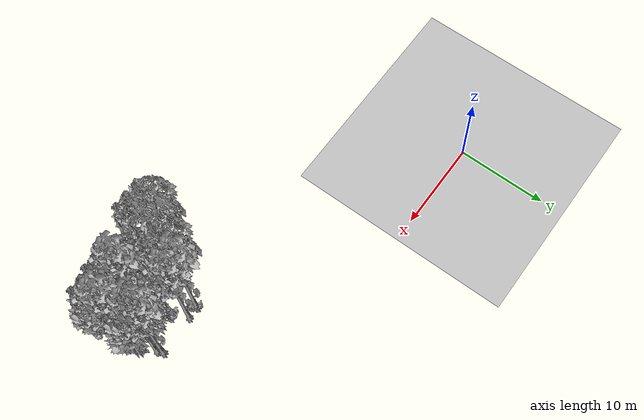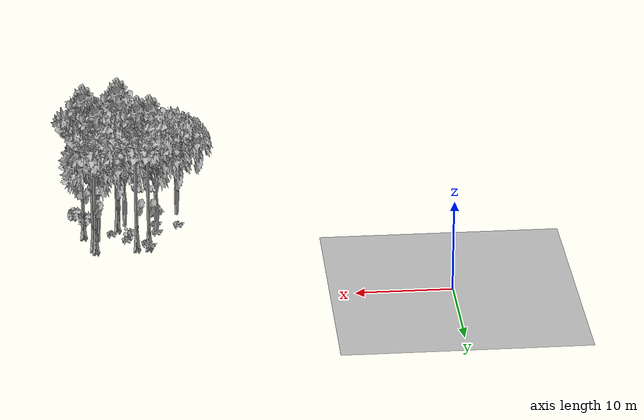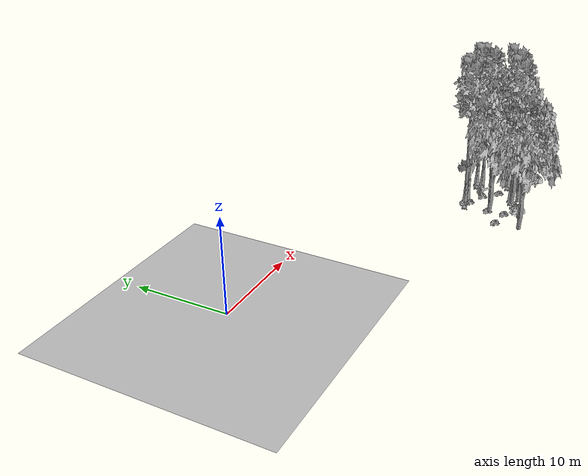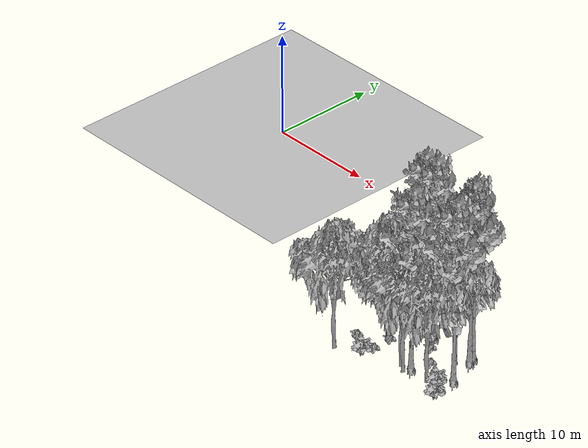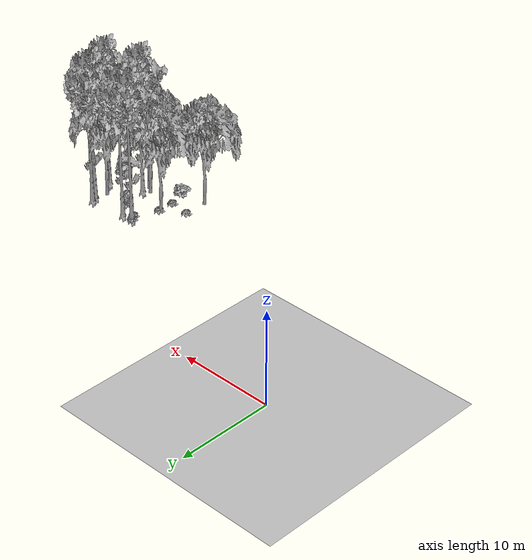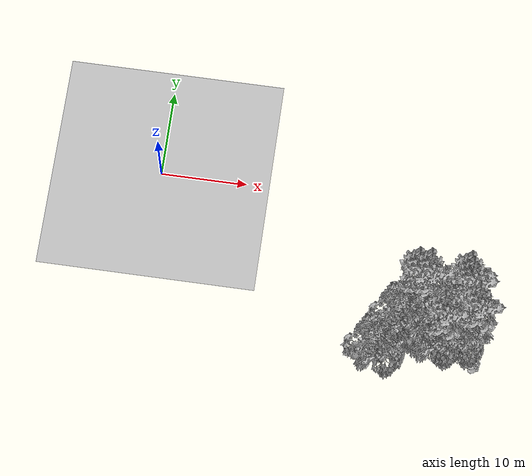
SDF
<sdf version="1.7">
 <world name="default">
  <model name="ground_plane">
   <static>1</static>
   <link name="link">
    <collision name="collision">
     <pose>-50 0 0 0 -0 0</pose>
     <geometry><plane><normal>0 0 1</normal><size>80 80</size></plane></geometry>
     <surface><contact><ode><min_depth>0.01</min_depth><max_vel>0</max_vel></ode></contact></surface>
    </collision>
    <visual name="grass">
     <cast_shadows>0</cast_shadows>
     <geometry>
      <mesh>
       <scale>0.46714285714285714 0.46714285714285714 0.1</scale>
       <uri>file://grass_plane/meshes/grass_plane.dae</uri>
      </mesh>
     </geometry>
    </visual>
   </link>
  </model>
  <model name="Tree 25">
   <static>1</static>
   <pose>35.75085206064344 -13.632023460624119 0 1.57079 -0 0</pose>
   <link name="link">
    <collision name="collision">
     <geometry><mesh><scale>3.5 5 3.5</scale><uri>model://tree_2/meshes/tree_2.obj</uri></mesh></geometry>
    </collision>
    <visual name="visual">
     <geometry><mesh><scale>3.5 5 3.5</scale><uri>model://tree_2/meshes/tree_2.obj</uri></mesh></geometry>
    </visual>
   </link>
  </model>
  <model name="Tree 173">
   <static>1</static>
   <pose>37.3353311587379 -15.262468988758442 0 1.57079 -0 0</pose>
   <link name="link">
    <collision name="collision">
     <geometry><mesh><scale>3.5 5 3.5</scale><uri>model://tree_9/meshes/tree_9.obj</uri></mesh></geometry>
    </collision>
    <visual name="visual">
     <geometry><mesh><scale>3.5 5 3.5</scale><uri>model://tree_9/meshes/tree_9.obj</uri></mesh></geometry>
    </visual>
   </link>
  </model>
  <model name="Tree 203">
   <static>1</static>
   <pose>36.35990970867587 -12.445683493047675 0 1.57079 -0 0</pose>
   <link name="link">
    <collision name="collision">
     <geometry><mesh><scale>3.5 5 3.5</scale><uri>model://tree_9/meshes/tree_9.obj</uri></mesh></geometry>
    </collision>
    <visual name="visual">
     <geometry><mesh><scale>3.5 5 3.5</scale><uri>model://tree_9/meshes/tree_9.obj</uri></mesh></geometry>
    </visual>
   </link>
  </model>
  <model name="Tree 224">
   <static>1</static>
   <pose>31.82428449700822 -12.114194373602292 0 1.57079 -0 0</pose>
   <link name="link">
    <collision name="collision">
     <geometry><mesh><scale>3.5 5 3.5</scale><uri>model://tree_9/meshes/tree_9.obj</uri></mesh></geometry>
    </collision>
    <visual name="visual">
     <geometry><mesh><scale>3.5 5 3.5</scale><uri>model://tree_9/meshes/tree_9.obj</uri></mesh></geometry>
    </visual>
   </link>
  </model>
  <model name="Tree 234">
   <static>1</static>
   <pose>32.87118699858688 -17.00976096299465 0 1.57079 -0 0</pose>
   <link name="link">
    <collision name="collision">
     <geometry><mesh><scale>3.5 5 3.5</scale><uri>model://tree_2/meshes/tree_2.obj</uri></mesh></geometry>
    </collision>
    <visual name="visual">
     <geometry><mesh><scale>3.5 5 3.5</scale><uri>model://tree_2/meshes/tree_2.obj</uri></mesh></geometry>
    </visual>
   </link>
  </model>
  <model name="Tree 238">
   <static>1</static>
   <pose>29.559674776918058 -15.360400300048713 0 1.57079 -0 0</pose>
   <link name="link">
    <collision name="collision">
     <geometry><mesh><scale>3.5 5 3.5</scale><uri>model://tree_2/meshes/tree_2.obj</uri></mesh></geometry>
    </collision>
    <visual name="visual">
     <geometry><mesh><scale>3.5 5 3.5</scale><uri>model://tree_2/meshes/tree_2.obj</uri></mesh></geometry>
    </visual>
   </link>
  </model>
  <model name="Tree 366">
   <static>1</static>
   <pose>35.93250983453267 -17.038593530272543 0 1.57079 -0 0</pose>
   <link name="link">
    <collision name="collision">
     <geometry><mesh><scale>3.5 5 3.5</scale><uri>model://tree_2/meshes/tree_2.obj</uri></mesh></geometry>
    </collision>
    <visual name="visual">
     <geometry><mesh><scale>3.5 5 3.5</scale><uri>model://tree_2/meshes/tree_2.obj</uri></mesh></geometry>
    </visual>
   </link>
  </model>
  <model name="Tree 368">
   <static>1</static>
   <pose>36.10434857061489 -11.8205086736989 0 1.57079 -0 0</pose>
   <link name="link">
    <collision name="collision">
     <geometry><mesh><scale>3.5 5 3.5</scale><uri>model://tree_9/meshes/tree_9.obj</uri></mesh></geometry>
    </collision>
    <visual name="visual">
     <geometry><mesh><scale>3.5 5 3.5</scale><uri>model://tree_9/meshes/tree_9.obj</uri></mesh></geometry>
    </visual>
   </link>
  </model>
  <model name="Tree 380">
   <static>1</static>
   <pose>27.279075793708557 -19.308364515857743 0 1.57079 -0 0</pose>
   <link name="link">
    <collision name="collision">
     <geometry><mesh><scale>3.5 5 3.5</scale><uri>model://tree_2/meshes/tree_2.obj</uri></mesh></geometry>
    </collision>
    <visual name="visual">
     <geometry><mesh><scale>3.5 5 3.5</scale><uri>model://tree_2/meshes/tree_2.obj</uri></mesh></geometry>
    </visual>
   </link>
  </model>
  <model name="Tree 534">
   <static>1</static>
   <pose>30.543814798238486 -12.181722392448108 0 1.57079 -0 0</pose>
   <link name="link">
    <collision name="collision">
     <geometry><mesh><scale>3.5 5 3.5</scale><uri>model://tree_9/meshes/tree_9.obj</uri></mesh></geometry>
    </collision>
    <visual name="visual">
     <geometry><mesh><scale>3.5 5 3.5</scale><uri>model://tree_9/meshes/tree_9.obj</uri></mesh></geometry>
    </visual>
   </link>
  </model>
  <model name="Tree 616">
   <static>1</static>
   <pose>33.56832045910002 -17.47179273220783 0 1.57079 -0 0</pose>
   <link name="link">
    <collision name="collision">
     <geometry><mesh><scale>3.5 5 3.5</scale><uri>model://tree_2/meshes/tree_2.obj</uri></mesh></geometry>
    </collision>
    <visual name="visual">
     <geometry><mesh><scale>3.5 5 3.5</scale><uri>model://tree_2/meshes/tree_2.obj</uri></mesh></geometry>
    </visual>
   </link>
  </model>
  <model name="Tree 633">
   <static>1</static>
   <pose>33.748540358735 -16.612200453178517 0 1.57079 -0 0</pose>
   <link name="link">
    <collision name="collision">
     <geometry><mesh><scale>3.5 5 3.5</scale><uri>model://tree_9/meshes/tree_9.obj</uri></mesh></geometry>
    </collision>
    <visual name="visual">
     <geometry><mesh><scale>3.5 5 3.5</scale><uri>model://tree_9/meshes/tree_9.obj</uri></mesh></geometry>
    </visual>
   </link>
  </model>
  <model name="Bush 25">
   <static>1</static>
   <pose>30.788819136941342 -12.711051635319286 0 1.57079 -0 0</pose>
   <link name="link">
    <collision name="collision">
     <geometry><mesh><scale>2 2 2</scale><uri>model://bush_2/meshes/bush_2.obj</uri></mesh></geometry>
     <surface><contact><collide_without_contact>false</collide_without_contact></contact></surface>
    </collision>
    <visual name="visual">
     <geometry><mesh><scale>2 2 2</scale><uri>model://bush_2/meshes/bush_2.obj</uri></mesh></geometry>
    </visual>
   </link>
  </model>
  <model name="Bush 139">
   <static>1</static>
   <pose>29.667393111033206 -17.01974280795617 0 1.57079 -0 0</pose>
   <link name="link">
    <collision name="collision">
     <geometry><mesh><scale>2 2 2</scale><uri>model://bush_2/meshes/bush_2.obj</uri></mesh></geometry>
     <surface><contact><collide_without_contact>false</collide_without_contact></contact></surface>
    </collision>
    <visual name="visual">
     <geometry><mesh><scale>2 2 2</scale><uri>model://bush_2/meshes/bush_2.obj</uri></mesh></geometry>
    </visual>
   </link>
  </model>
  <model name="Bush 154">
   <static>1</static>
   <pose>27.303553207454584 -16.708850806992245 0 1.57079 -0 0</pose>
   <link name="link">
    <collision name="collision">
     <geometry><mesh><scale>2 2 2</scale><uri>model://bush_2/meshes/bush_2.obj</uri></mesh></geometry>
     <surface><contact><collide_without_contact>false</collide_without_contact></contact></surface>
    </collision>
    <visual name="visual">
     <geometry><mesh><scale>2 2 2</scale><uri>model://bush_2/meshes/bush_2.obj</uri></mesh></geometry>
    </visual>
   </link>
  </model>
  <model name="Bush 195">
   <static>1</static>
   <pose>30.38410364694961 -12.150822310139596 0 1.57079 -0 0</pose>
   <link name="link">
    <collision name="collision">
     <geometry><mesh><scale>2 2 2</scale><uri>model://bush_2/meshes/bush_2.obj</uri></mesh></geometry>
     <surface><contact><collide_without_contact>false</collide_without_contact></contact></surface>
    </collision>
    <visual name="visual">
     <geometry><mesh><scale>2 2 2</scale><uri>model://bush_2/meshes/bush_2.obj</uri></mesh></geometry>
    </visual>
   </link>
  </model>
  <model name="Bush 208">
   <static>1</static>
   <pose>32.693014268202845 -13.383989700131885 0 1.57079 -0 0</pose>
   <link name="link">
    <collision name="collision">
     <geometry><mesh><scale>2 2 2</scale><uri>model://bush_0/meshes/bush_0.obj</uri></mesh></geometry>
     <surface><contact><collide_without_contact>false</collide_without_contact></contact></surface>
    </collision>
    <visual name="visual">
     <geometry><mesh><scale>2 2 2</scale><uri>model://bush_0/meshes/bush_0.obj</uri></mesh></geometry>
    </visual>
   </link>
  </model>
  <model name="Bush 285">
   <static>1</static>
   <pose>29.70199969715489 -18.50368664786327 0 1.57079 -0 0</pose>
   <link name="link">
    <collision name="collision">
     <geometry><mesh><scale>2 2 2</scale><uri>model://bush_1/meshes/bush_1.obj</uri></mesh></geometry>
     <surface><contact><collide_without_contact>false</collide_without_contact></contact></surface>
    </collision>
    <visual name="visual">
     <geometry><mesh><scale>2 2 2</scale><uri>model://bush_1/meshes/bush_1.obj</uri></mesh></geometry>
    </visual>
   </link>
  </model>
  <model name="Bush 359">
   <static>1</static>
   <pose>37.04111803592558 -17.101893591331052 0 1.57079 -0 0</pose>
   <link name="link">
    <collision name="collision">
     <geometry><mesh><scale>2 2 2</scale><uri>model://bush_1/meshes/bush_1.obj</uri></mesh></geometry>
     <surface><contact><collide_without_contact>false</collide_without_contact></contact></surface>
    </collision>
    <visual name="visual">
     <geometry><mesh><scale>2 2 2</scale><uri>model://bush_1/meshes/bush_1.obj</uri></mesh></geometry>
    </visual>
   </link>
  </model>
  <model name="Bush 420">
   <static>1</static>
   <pose>38.18745016357029 -18.38058312742629 0 1.57079 -0 0</pose>
   <link name="link">
    <collision name="collision">
     <geometry><mesh><scale>2 2 2</scale><uri>model://bush_1/meshes/bush_1.obj</uri></mesh></geometry>
     <surface><contact><collide_without_contact>false</collide_without_contact></contact></surface>
    </collision>
    <visual name="visual">
     <geometry><mesh><scale>2 2 2</scale><uri>model://bush_1/meshes/bush_1.obj</uri></mesh></geometry>
    </visual>
   </link>
  </model>
  <model name="Bush 421">
   <static>1</static>
   <pose>29.627520758480287 -15.150425138289052 0 1.57079 -0 0</pose>
   <link name="link">
    <collision name="collision">
     <geometry><mesh><scale>2 2 2</scale><uri>model://bush_2/meshes/bush_2.obj</uri></mesh></geometry>
     <surface><contact><collide_without_contact>false</collide_without_contact></contact></surface>
    </collision>
    <visual name="visual">
     <geometry><mesh><scale>2 2 2</scale><uri>model://bush_2/meshes/bush_2.obj</uri></mesh></geometry>
    </visual>
   </link>
  </model>
  <model name="Bush 439">
   <static>1</static>
   <pose>34.34967420350313 -15.066710393597766 0 1.57079 -0 0</pose>
   <link name="link">
    <collision name="collision">
     <geometry><mesh><scale>2 2 2</scale><uri>model://bush_2/meshes/bush_2.obj</uri></mesh></geometry>
     <surface><contact><collide_without_contact>false</collide_without_contact></contact></surface>
    </collision>
    <visual name="visual">
     <geometry><mesh><scale>2 2 2</scale><uri>model://bush_2/meshes/bush_2.obj</uri></mesh></geometry>
    </visual>
   </link>
  </model>
  <model name="Bush 558">
   <static>1</static>
   <pose>32.826312963289126 -13.579903354637413 0 1.57079 -0 0</pose>
   <link name="link">
    <collision name="collision">
     <geometry><mesh><scale>2 2 2</scale><uri>model://bush_2/meshes/bush_2.obj</uri></mesh></geometry>
     <surface><contact><collide_without_contact>false</collide_without_contact></contact></surface>
    </collision>
    <visual name="visual">
     <geometry><mesh><scale>2 2 2</scale><uri>model://bush_2/meshes/bush_2.obj</uri></mesh></geometry>
    </visual>
   </link>
  </model>
 </world>
</sdf>
